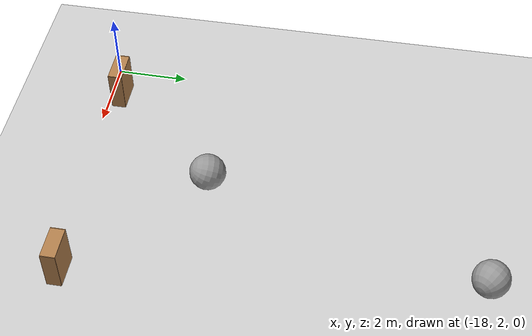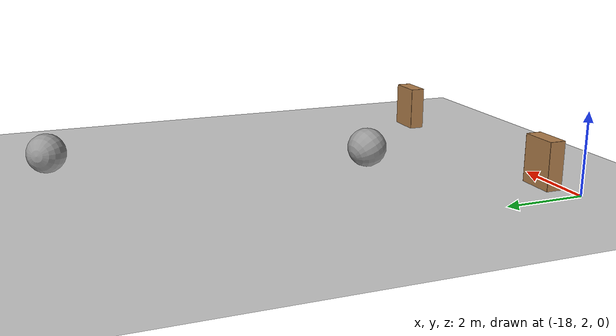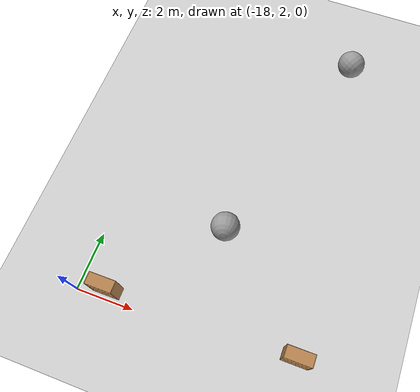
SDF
<sdf version="1.7">
 <world name="default">
  <model name="ground_plane">
   <static>1</static>
   <link name="link">
    <collision name="collision">
     <geometry><plane><normal>0 0 1</normal><size>1000 1000</size></plane></geometry>
     <surface>
      <contact><collide_bitmask>65535</collide_bitmask></contact>
      <friction><ode><mu>100</mu><mu2>50</mu2></ode></friction>
     </surface>
    </collision>
    <visual name="visual">
     <cast_shadows>0</cast_shadows>
     <geometry><plane><normal>0 0 1</normal><size>100 100</size></plane></geometry>
     <material>
      <script><uri>file://media/materials/scripts/gazebo.material</uri><name>Gazebo/Grey</name></script>
     </material>
    </visual>
   </link>
  </model>
  <model name="bookshelf_2">
   <static>1</static>
   <link name="link">
    <inertial><mass>1</mass></inertial>
    <collision name="back">
     <pose>0 0.005 0.6 0 -0 0</pose>
     <geometry><box><size>0.9 0.01 1.2</size></box></geometry>
    </collision>
    <visual name="visual1">
     <pose>0 0.005 0.6 0 -0 0</pose>
     <geometry><box><size>0.9 0.01 1.2</size></box></geometry>
     <material>
      <script><uri>file://media/materials/scripts/gazebo.material</uri><name>Gazebo/Wood</name></script>
     </material>
    </visual>
    <collision name="left_side">
     <pose>0.45 -0.195 0.6 0 -0 0</pose>
     <geometry><box><size>0.02 0.4 1.2</size></box></geometry>
    </collision>
    <visual name="visual2">
     <pose>0.45 -0.195 0.6 0 -0 0</pose>
     <geometry><box><size>0.02 0.4 1.2</size></box></geometry>
     <material>
      <script><uri>file://media/materials/scripts/gazebo.material</uri><name>Gazebo/Wood</name></script>
     </material>
    </visual>
    <collision name="right_side">
     <pose>-0.45 -0.195 0.6 0 -0 0</pose>
     <geometry><box><size>0.02 0.4 1.2</size></box></geometry>
    </collision>
    <visual name="visual3">
     <pose>-0.45 -0.195 0.6 0 -0 0</pose>
     <geometry><box><size>0.02 0.4 1.2</size></box></geometry>
     <material>
      <script><uri>file://media/materials/scripts/gazebo.material</uri><name>Gazebo/Wood</name></script>
     </material>
    </visual>
    <collision name="bottom">
     <pose>0 -0.195 0.03 0 -0 0</pose>
     <geometry><box><size>0.88 0.4 0.06</size></box></geometry>
    </collision>
    <visual name="visual4">
     <pose>0 -0.195 0.03 0 -0 0</pose>
     <geometry><box><size>0.88 0.4 0.06</size></box></geometry>
     <material>
      <script><uri>file://media/materials/scripts/gazebo.material</uri><name>Gazebo/Wood</name></script>
     </material>
    </visual>
    <collision name="top">
     <pose>0 -0.195 1.19 0 -0 0</pose>
     <geometry><box><size>0.88 0.4 0.02</size></box></geometry>
    </collision>
    <visual name="visual5">
     <pose>0 -0.195 1.19 0 -0 0</pose>
     <geometry><box><size>0.88 0.4 0.02</size></box></geometry>
     <material>
      <script><uri>file://media/materials/scripts/gazebo.material</uri><name>Gazebo/Wood</name></script>
     </material>
    </visual>
    <collision name="low_shelf">
     <pose>0 -0.195 0.43 0 -0 0</pose>
     <geometry><box><size>0.88 0.4 0.02</size></box></geometry>
    </collision>
    <visual name="visual6">
     <pose>0 -0.195 0.43 0 -0 0</pose>
     <geometry><box><size>0.88 0.4 0.02</size></box></geometry>
     <material>
      <script><uri>file://media/materials/scripts/gazebo.material</uri><name>Gazebo/Wood</name></script>
     </material>
    </visual>
    <collision name="high_shelf">
     <pose>0 -0.195 0.8 0 -0 0</pose>
     <geometry><box><size>0.88 0.4 0.02</size></box></geometry>
    </collision>
    <visual name="visual7">
     <pose>0 -0.195 0.8 0 -0 0</pose>
     <geometry><box><size>0.88 0.4 0.02</size></box></geometry>
     <material>
      <script><uri>file://media/materials/scripts/gazebo.material</uri><name>Gazebo/Wood</name></script>
     </material>
    </visual>
   </link>
   <pose>-10.5688 2.57533 0 0 -0 0</pose>
  </model>
  <model name="bookshelf_15">
   <static>1</static>
   <link name="link">
    <inertial><mass>1</mass></inertial>
    <collision name="back">
     <pose>0 0.005 0.6 0 -0 0</pose>
     <geometry><box><size>0.9 0.01 1.2</size></box></geometry>
    </collision>
    <visual name="visual1">
     <pose>0 0.005 0.6 0 -0 0</pose>
     <geometry><box><size>0.9 0.01 1.2</size></box></geometry>
     <material>
      <script><uri>file://media/materials/scripts/gazebo.material</uri><name>Gazebo/Wood</name></script>
     </material>
    </visual>
    <collision name="left_side">
     <pose>0.45 -0.195 0.6 0 -0 0</pose>
     <geometry><box><size>0.02 0.4 1.2</size></box></geometry>
    </collision>
    <visual name="visual2">
     <pose>0.45 -0.195 0.6 0 -0 0</pose>
     <geometry><box><size>0.02 0.4 1.2</size></box></geometry>
     <material>
      <script><uri>file://media/materials/scripts/gazebo.material</uri><name>Gazebo/Wood</name></script>
     </material>
    </visual>
    <collision name="right_side">
     <pose>-0.45 -0.195 0.6 0 -0 0</pose>
     <geometry><box><size>0.02 0.4 1.2</size></box></geometry>
    </collision>
    <visual name="visual3">
     <pose>-0.45 -0.195 0.6 0 -0 0</pose>
     <geometry><box><size>0.02 0.4 1.2</size></box></geometry>
     <material>
      <script><uri>file://media/materials/scripts/gazebo.material</uri><name>Gazebo/Wood</name></script>
     </material>
    </visual>
    <collision name="bottom">
     <pose>0 -0.195 0.03 0 -0 0</pose>
     <geometry><box><size>0.88 0.4 0.06</size></box></geometry>
    </collision>
    <visual name="visual4">
     <pose>0 -0.195 0.03 0 -0 0</pose>
     <geometry><box><size>0.88 0.4 0.06</size></box></geometry>
     <material>
      <script><uri>file://media/materials/scripts/gazebo.material</uri><name>Gazebo/Wood</name></script>
     </material>
    </visual>
    <collision name="top">
     <pose>0 -0.195 1.19 0 -0 0</pose>
     <geometry><box><size>0.88 0.4 0.02</size></box></geometry>
    </collision>
    <visual name="visual5">
     <pose>0 -0.195 1.19 0 -0 0</pose>
     <geometry><box><size>0.88 0.4 0.02</size></box></geometry>
     <material>
      <script><uri>file://media/materials/scripts/gazebo.material</uri><name>Gazebo/Wood</name></script>
     </material>
    </visual>
    <collision name="low_shelf">
     <pose>0 -0.195 0.43 0 -0 0</pose>
     <geometry><box><size>0.88 0.4 0.02</size></box></geometry>
    </collision>
    <visual name="visual6">
     <pose>0 -0.195 0.43 0 -0 0</pose>
     <geometry><box><size>0.88 0.4 0.02</size></box></geometry>
     <material>
      <script><uri>file://media/materials/scripts/gazebo.material</uri><name>Gazebo/Wood</name></script>
     </material>
    </visual>
    <collision name="high_shelf">
     <pose>0 -0.195 0.8 0 -0 0</pose>
     <geometry><box><size>0.88 0.4 0.02</size></box></geometry>
    </collision>
    <visual name="visual7">
     <pose>0 -0.195 0.8 0 -0 0</pose>
     <geometry><box><size>0.88 0.4 0.02</size></box></geometry>
     <material>
      <script><uri>file://media/materials/scripts/gazebo.material</uri><name>Gazebo/Wood</name></script>
     </material>
    </visual>
   </link>
   <pose>-17.0152 2.52816 0 0 -0 0</pose>
  </model>
  <model name="unit_sphere">
   <pose>-11.8142 13.3554 0.5 1.45615 0.517604 -2.17204</pose>
   <link name="link">
    <inertial>
     <mass>1</mass>
     <inertia><ixx>0.1</ixx><ixy>0</ixy><ixz>0</ixz><iyy>0.1</iyy><iyz>0</iyz><izz>0.1</izz></inertia>
    </inertial>
    <collision name="collision">
     <geometry><sphere><radius>0.5</radius></sphere></geometry>
     <surface>
      <bounce>
       <restitution_coefficient>1</restitution_coefficient>
       <min_depth>0.01</min_depth>
       <max_depth>0.05</max_depth>
       <soft_cfm>0.1</soft_cfm>
      </bounce>
     </surface>
    </collision>
    <visual name="visual">
     <geometry><sphere><radius>0.5</radius></sphere></geometry>
     <material>
      <script><name>Gazebo/Grey</name><uri>file://media/materials/scripts/gazebo.material</uri></script>
     </material>
    </visual>
   </link>
  </model>
  <model name="unit_sphere_0_clone_clone">
   <pose>-14.0938 5.56564 0.5 -0.514371 -1.07701 2.34418</pose>
   <link name="link">
    <inertial>
     <mass>1</mass>
     <inertia><ixx>0.1</ixx><ixy>0</ixy><ixz>0</ixz><iyy>0.1</iyy><iyz>0</iyz><izz>0.1</izz></inertia>
    </inertial>
    <collision name="collision">
     <geometry><sphere><radius>0.5</radius></sphere></geometry>
     <surface>
      <bounce>
       <restitution_coefficient>1</restitution_coefficient>
       <min_depth>0.01</min_depth>
       <max_depth>0.05</max_depth>
       <soft_cfm>0.1</soft_cfm>
      </bounce>
     </surface>
    </collision>
    <visual name="visual">
     <geometry><sphere><radius>0.5</radius></sphere></geometry>
     <material>
      <script><name>Gazebo/Grey</name><uri>file://media/materials/scripts/gazebo.material</uri></script>
     </material>
    </visual>
   </link>
  </model>
 </world>
</sdf>
